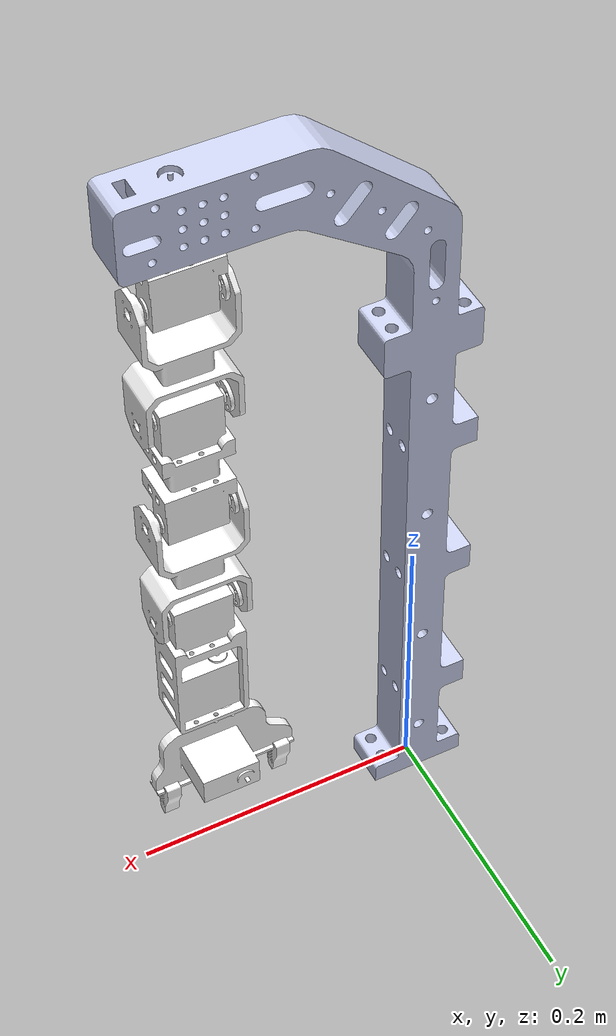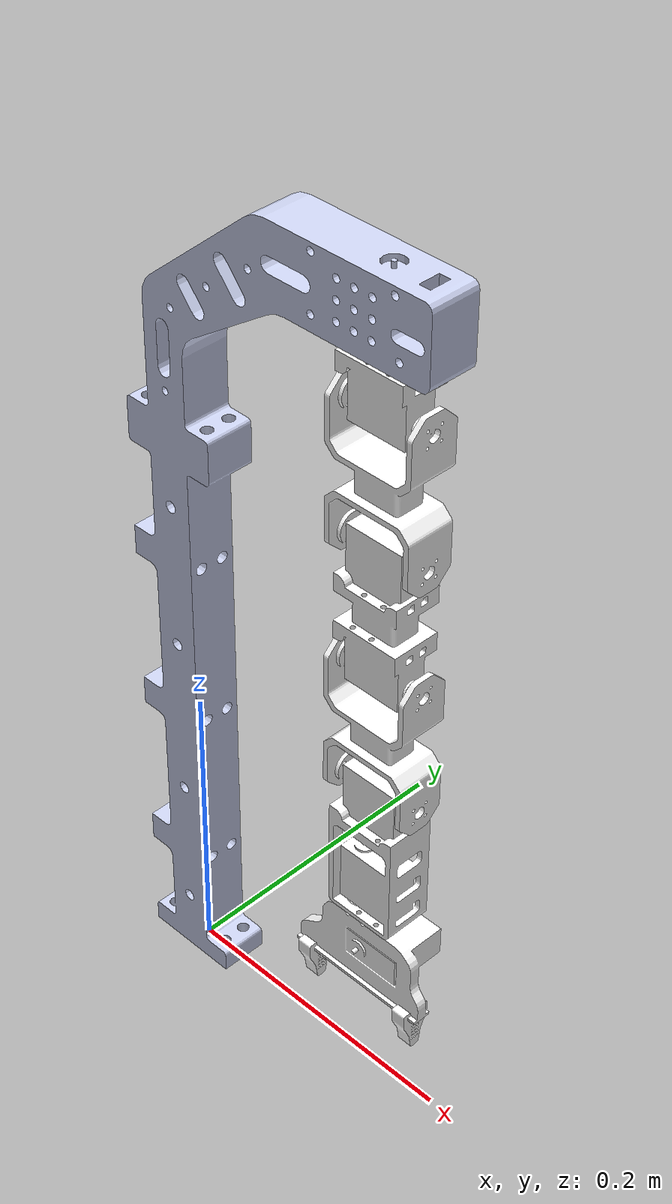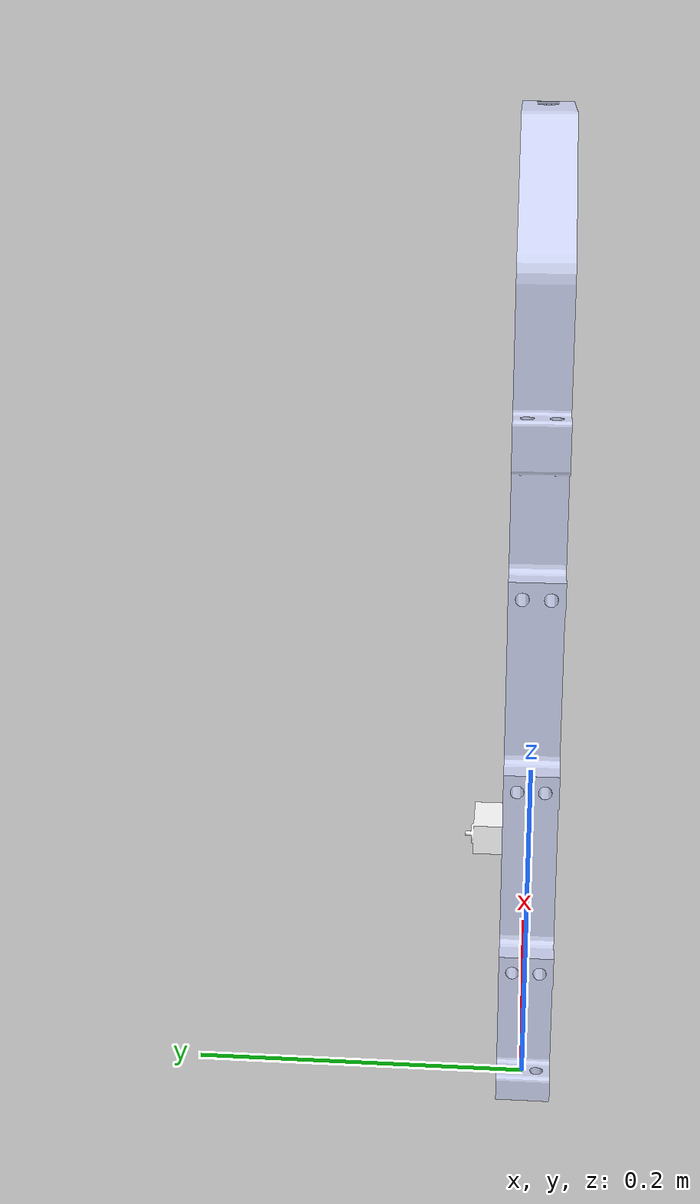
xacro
<?xml version="1.0"?>
<robot xmlns:xacro="http://www.ros.org/wiki/xacro" name="pick_place_arm">
    <xacro:arg name="initial_positions_file" default="initial_positions.yaml" />
    <xacro:arg name="use_fake_hardware" default="false" />

    <!-- Import pick_place_arm URDF -->
    <xacro:include filename="$(find pick_place_arm)/urdf/arm.urdf.xacro" />

    <!-- Conditionally include fake hardware ros2_control if not using Gazebo -->
    <xacro:if value="$(arg use_fake_hardware)">
        <xacro:include filename="$(find pick_place_hardware)/config/fake_hardware.ros2_control.xacro" />
        <xacro:fake_hardware_ros2_control name="FakeRobotSystem" />
    </xacro:if>
</robot>

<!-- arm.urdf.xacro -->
<robot xmlns:xacro="http://www.ros.org/wiki/xacro" name="pick_place_arm">

    <xacro:arg name="gazebo_control" default="true" />
    <!-- Add dummy world link and fixed base_joint so base_link is not the URDF root
         (matches SRDF which declares base_joint and avoids KDL root-inertia warning) -->
    <link name="world" />
    <joint name="base_joint" type="fixed">
        <parent link="world" />
        <child link="base_link" />
        <!-- base_link at world origin (z=0) -->
        <origin rpy="0 0 0" xyz="0 0 0" />
    </joint>

    <!-- base link/joint -->
    <link
        name="base_link">
        <inertial>
            <origin
                xyz="0.032059662853705 1.38777878078145E-16 0.341229394008098"
                rpy="0 0 0" />
            <mass
                value="0.78517256166207" />
            <inertia
                ixx="0.0070784931397645"
                ixy="-4.56743079844887E-18"
                ixz="-0.000731711350776652"
                iyy="0.00836971536713227"
                iyz="-2.53429520874075E-18"
                izz="0.00132642251104824" />
        </inertial>
        <visual>
            <!-- shift mesh down by inertial z so bottom sits near world z=0 -->
            <origin
                xyz="0 0 0"
                rpy="0 0 0" />
            <geometry>
                <mesh
                    filename="package://pick_place_arm/meshes/base_link.STL"
                    scale="1 1 1" />
            </geometry>
            <material
                name="">
                <color
                    rgba="0.792156862745098 0.819607843137255 0.933333333333333 1" />
            </material>
        </visual>
        <collision>
            <!-- match collision to visual offset -->
            <origin
                xyz="0 0 0"
                rpy="0 0 0" />
            <geometry>
                <mesh
                    filename="package://pick_place_arm/meshes/base_link.STL"
                    scale="1 1 1" />
            </geometry>
        </collision>
    </link>

    <!-- link and  joint 1 -->
    <link
        name="l1">
        <inertial>
            <origin
                xyz="-2.06768076421691E-05 5.55111512312578E-17 -0.0236812970530659"
                rpy="0 0 0" />
            <mass
                value="0.0412610106656879" />
            <inertia
                ixx="6.45452263055135E-06"
                ixy="2.11421567445258E-20"
                ixz="-5.6717389565191E-10"
                iyy="1.08529418395194E-05"
                iyz="-1.09193933489413E-20"
                izz="8.35698735982533E-06" />
        </inertial>
        <visual>
            <origin
                xyz="0 0 0"
                rpy="0 0 0" />
            <geometry>
                <mesh
                    filename="package://pick_place_arm/meshes/l1.STL"
                    scale="1 1 1" />
            </geometry>
            <material
                name="">
                <color
                    rgba="1 1 1 1" />
            </material>
        </visual>
        <collision>
            <origin
                xyz="0 0 0"
                rpy="0 0 0" />
            <geometry>
                <mesh
                    filename="package://pick_place_arm/meshes/l1.STL"
                    scale="1 1 1" />
            </geometry>
        </collision>
    </link>

    <joint
        name="j1"
        type="revolute">
        <origin
            xyz="0.152 0 0.4755"
            rpy="3.14159265358979 0 0" />
        <parent
            link="base_link" />
        <child
            link="l1" />
        <axis
            xyz="0 0 1" />
        <limit
            lower="-3.14"
            upper="3.14"
            effort="3.5"
            velocity="5" />
    </joint>

    <transmission name="l1_trans">
        <type>transmission_interface/SimpleTransmission</type>
        <joint name="j1">
            <hardwareInterface>hardware_interface/PositionJointInterface</hardwareInterface>
        </joint>
        <actuator name="l1_motor">
            <hardwareInterface>hardware_interface/PositionJointInterface</hardwareInterface>
            <mechanicalReduction>1</mechanicalReduction>
        </actuator>
    </transmission>

    <gazebo reference="l1">
        <selfCollide>false</selfCollide>
    </gazebo>

    <!-- link and joint 2 -->
    <link
        name="l2">
        <inertial>
            <origin
                xyz="0.0420000000000759 -3.38923333842445E-13 -2.54136989230602E-16"
                rpy="0 0 0" />
            <mass
                value="0.0412639771770678" />
            <inertia
                ixx="2.03861872352237E-05"
                ixy="3.95910079860835E-17"
                ixz="-4.11255155103057E-20"
                iyy="2.30212674355658E-05"
                iyz="3.04387551826405E-19"
                izz="8.54833447441498E-06" />
        </inertial>
        <visual>
            <origin
                xyz="0 0 0"
                rpy="0 0 0" />
            <geometry>
                <mesh
                    filename="package://pick_place_arm/meshes/l2.STL"
                    scale="1 1 1" />
            </geometry>
            <material
                name="">
                <color
                    rgba="1 1 1 1" />
            </material>
        </visual>
        <collision>
            <origin
                xyz="0 0 0"
                rpy="0 0 0" />
            <geometry>
                <mesh
                    filename="package://pick_place_arm/meshes/l2.STL"
                    scale="1 1 1" />
            </geometry>
        </collision>
    </link>

    <joint
        name="j2"
        type="revolute">
        <origin
            xyz="0 0 -0.01"
            rpy="0 -1.5707963267949 0" />
        <parent
            link="l1" />
        <child
            link="l2" />
        <axis
            xyz="0 0 1" />
        <limit
            lower="-1.57"
            upper="1.57"
            effort="3.5"
            velocity="5" />
    </joint>

    <transmission name="l2_trans">
        <type>transmission_interface/SimpleTransmission</type>
        <joint name="j2">
            <hardwareInterface>hardware_interface/PositionJointInterface</hardwareInterface>
        </joint>
        <actuator name="l2_motor">
            <hardwareInterface>hardware_interface/PositionJointInterface</hardwareInterface>
            <mechanicalReduction>1</mechanicalReduction>
        </actuator>
    </transmission>

    <gazebo reference="l2">
        <selfCollide>false</selfCollide>
    </gazebo>

    <!-- link and joint 3 -->
    <link
        name="l3">
        <inertial>
            <origin
                xyz="0.0424999999999702 -4.47003545289704E-13 -2.42861286636753E-16"
                rpy="0 0 0" />
            <mass
                value="0.0895845826981461" />
            <inertia
                ixx="1.79494942674491E-05"
                ixy="-2.23469531118263E-17"
                ixz="-1.134347791319E-09"
                iyy="2.28721177257845E-05"
                iyz="-7.76933238540634E-21"
                izz="1.35465501240485E-05" />
        </inertial>
        <visual>
            <origin
                xyz="0 0 0"
                rpy="0 0 0" />
            <geometry>
                <mesh
                    filename="package://pick_place_arm/meshes/l3.STL"
                    scale="1 1 1" />
            </geometry>
            <material
                name="">
                <color
                    rgba="1 1 1 1" />
            </material>
        </visual>
        <collision>
            <origin
                xyz="0 0 0"
                rpy="0 0 0" />
            <geometry>
                <mesh
                    filename="package://pick_place_arm/meshes/l3.STL"
                    scale="1 1 1" />
            </geometry>
        </collision>
    </link>

    <joint
        name="j3"
        type="revolute">
        <origin
            xyz="0.084 0 0"
            rpy="0 0 0" />
        <parent
            link="l2" />
        <child
            link="l3" />
        <axis
            xyz="0 0 1" />
        <limit
            lower="-1.57"
            upper="1.57"
            effort="3.5"
            velocity="5" />
    </joint>

    <transmission name="l3_trans">
        <type>transmission_interface/SimpleTransmission</type>
        <joint name="j3">
            <hardwareInterface>hardware_interface/PositionJointInterface</hardwareInterface>
        </joint>
        <actuator name="l3_motor">
            <hardwareInterface>hardware_interface/PositionJointInterface</hardwareInterface>
            <mechanicalReduction>1</mechanicalReduction>
        </actuator>
    </transmission>

    <gazebo reference="l3">
        <selfCollide>false</selfCollide>
    </gazebo>

    <!-- link and joint 4 -->
    <link
        name="l4">
        <inertial>
            <origin
                xyz="0.0419999999999631 -8.77908856722343E-14 -6.76542155630955E-17"
                rpy="0 0 0" />
            <mass
                value="0.0412639771770679" />
            <inertia
                ixx="2.03861872352238E-05"
                ixy="-1.19599812382758E-17"
                ixz="1.25855831166055E-20"
                iyy="2.30212674355659E-05"
                iyz="-3.19494281538403E-21"
                izz="8.54833447441501E-06" />
        </inertial>
        <visual>
            <origin
                xyz="0 0 0"
                rpy="0 0 0" />
            <geometry>
                <mesh
                    filename="package://pick_place_arm/meshes/l4.STL"
                    scale="1 1 1" />
            </geometry>
            <material
                name="">
                <color
                    rgba="1 1 1 1" />
            </material>
        </visual>
        <collision>
            <origin
                xyz="0 0 0"
                rpy="0 0 0" />
            <geometry>
                <mesh
                    filename="package://pick_place_arm/meshes/l4.STL"
                    scale="1 1 1" />
            </geometry>
        </collision>
    </link>

    <joint
        name="j4"
        type="revolute">
        <origin
            xyz="0.085 0 0"
            rpy="0 0 0" />
        <parent
            link="l3" />
        <child
            link="l4" />
        <axis
            xyz="0 0 1" />
        <limit
            lower="-1.57"
            upper="1.57"
            effort="1.5"
            velocity="5" />
    </joint>

    <transmission name="l4_trans">
        <type>transmission_interface/SimpleTransmission</type>
        <joint name="j4">
            <hardwareInterface>hardware_interface/PositionJointInterface</hardwareInterface>
        </joint>
        <actuator name="l4_motor">
            <hardwareInterface>hardware_interface/PositionJointInterface</hardwareInterface>
            <mechanicalReduction>1</mechanicalReduction>
        </actuator>
    </transmission>

    <gazebo reference="l4">
        <selfCollide>false</selfCollide>
    </gazebo>

    <!-- link and joint 5 -->
    <link
        name="l5">
        <inertial>
            <origin
                xyz="0.0451157165053789 -6.8534003345444E-05 0.000519380260867306"
                rpy="0 0 0" />
            <mass
                value="0.0877350527785507" />
            <inertia
                ixx="2.15592269641528E-05"
                ixy="1.08634477532556E-12"
                ixz="6.61837513500239E-07"
                iyy="4.21271739710682E-05"
                iyz="-2.81945761009753E-12"
                izz="2.9808063539004E-05" />
        </inertial>
        <visual>
            <origin
                xyz="0 0 0"
                rpy="0 0 0" />
            <geometry>
                <mesh
                    filename="package://pick_place_arm/meshes/l5.STL"
                    scale="1 1 1" />
            </geometry>
            <material
                name="">
                <color
                    rgba="1 1 1 1" />
            </material>
        </visual>
        <collision>
            <origin
                xyz="0 0 0"
                rpy="0 0 0" />
            <geometry>
                <mesh
                    filename="package://pick_place_arm/meshes/l5.STL"
                    scale="1 1 1" />
            </geometry>
        </collision>
    </link>

    <joint
        name="j5"
        type="revolute">
        <origin
            xyz="0.0840000000000002 0 0"
            rpy="0 0 0" />
        <parent
            link="l4" />
        <child
            link="l5" />
        <axis
            xyz="0 0 1" />
        <limit
            lower="-1.57"
            upper="1.57"
            effort="1.5"
            velocity="5" />
    </joint>

    <transmission name="l5_trans">
        <type>transmission_interface/SimpleTransmission</type>
        <joint name="j5">
            <hardwareInterface>hardware_interface/PositionJointInterface</hardwareInterface>
        </joint>
        <actuator name="l5_motor">
            <hardwareInterface>hardware_interface/PositionJointInterface</hardwareInterface>
            <mechanicalReduction>1</mechanicalReduction>
        </actuator>
    </transmission>

    <gazebo reference="l5">
        <selfCollide>false</selfCollide>
    </gazebo>

    <!-- link and joint 6 -->
    <link
        name="l6">
        <inertial>
            <origin
                xyz="0.00576248475220886 -0.00836947985173901 0.0418281038474617"
                rpy="0 0 0" />
            <mass
                value="0.0615654328368001" />
            <inertia
                ixx="1.3328395039682E-05"
                ixy="-5.68177296906049E-17"
                ixz="8.11263645845668E-07"
                iyy="3.09874612165587E-05"
                iyz="1.14559993754873E-10"
                izz="2.71409608334319E-05" />
        </inertial>
        <visual>
            <origin
                xyz="0 0 0"
                rpy="0 0 0" />
            <geometry>
                <mesh
                    filename="package://pick_place_arm/meshes/l6.STL"
                    scale="1 1 1" />
            </geometry>
            <material
                name="">
                <color
                    rgba="1 1 1 1" />
            </material>
        </visual>
        <collision>
            <origin
                xyz="0 0 0"
                rpy="0 0 0" />
            <geometry>
                <mesh
                    filename="package://pick_place_arm/meshes/l6.STL"
                    scale="1 1 1" />
            </geometry>
        </collision>
    </link>

    <joint
        name="j6"
        type="revolute">
        <origin
            xyz="0.0969999999999956 -0.000110000000008909 0.0114999999999995"
            rpy="0 1.5707963267949 0" />
        <parent
            link="l5" />
        <child
            link="l6" />
        <axis
            xyz="0 0 1" />
        <limit
            lower="-3.14"
            upper="3.14"
            effort="1.5"
            velocity="5" />
    </joint>

    <transmission name="l6_trans">
        <type>transmission_interface/SimpleTransmission</type>
        <joint name="j6">
            <hardwareInterface>hardware_interface/PositionJointInterface</hardwareInterface>
        </joint>
        <actuator name="l6_motor">
            <hardwareInterface>hardware_interface/PositionJointInterface</hardwareInterface>
            <mechanicalReduction>1</mechanicalReduction>
        </actuator>
    </transmission>

    <gazebo reference="l6">
        <selfCollide>false</selfCollide>
    </gazebo>

    <!-- link and joint 7l -->
    <link name="l7l">
        <inertial>
            <origin xyz="-0.00499999999999944 -0.00382395666679802 0.0172076606105726" rpy="0 0 0" />
            <mass value="0.00361048012577551" />
            <inertia ixx="3.45772069124056E-07" ixy="-2.03295410732378E-22" ixz="-6.72951643176804E-22" iyy="2.76867577106351E-07" iyz="-1.6984888429881E-10" izz="1.29079160780631E-07" />
        </inertial>
        <visual>
            <origin xyz="0 0 0" rpy="0 0 0" />
            <geometry>
                <mesh filename="package://pick_place_arm/meshes/l7l.STL" scale="1 1 1" />
            </geometry>
            <material name="">
                <color rgba="1 1 1 1" />
            </material>
        </visual>
        <collision>
            <origin xyz="0 0 0" rpy="0 0 0" />
            <geometry>
                <mesh filename="package://pick_place_arm/meshes/l7l.STL" scale="1 1 1" />
            </geometry>
        </collision>
    </link>

    <joint name="j7l" type="prismatic">
        <!-- restored original joint origin so gripper aligns correctly with l6 -->
        <origin xyz="-0.0349999999999994 0.00432899628274147 0.059645910780674" rpy="0 0 0" />
        <parent link="l6" />
        <child link="l7l" />
        <axis xyz="-1 0 0" />
        <limit lower="-0.07" upper="0" effort="1.5" velocity="0.1" />
    </joint>

    <transmission name="l7l_trans">
        <type>transmission_interface/SimpleTransmission</type>
        <joint name="j7l">
            <hardwareInterface>hardware_interface/PositionJointInterface</hardwareInterface>
        </joint>
        <actuator name="l7l_motor">
            <hardwareInterface>hardware_interface/PositionJointInterface</hardwareInterface>
            <mechanicalReduction>1</mechanicalReduction>
        </actuator>
    </transmission>

    <gazebo reference="l7l">
        <selfCollide>false</selfCollide>
    </gazebo>

    <!-- link and joint 7r -->
    <link name="l7r">
        <inertial>
            <origin xyz="-0.00500000000000059 -0.00382395666679794 -0.0172076606105728" rpy="0 0 0" />
            <mass value="0.0036104801257755" />
            <inertia ixx="3.45772069124056E-07" ixy="6.60142987848138E-22" ixz="-9.38876447288083E-22" iyy="2.7686757710635E-07" iyz="1.69848884298589E-10" izz="1.29079160780631E-07" />
        </inertial>
        <visual>
            <origin xyz="0 0 0" rpy="0 0 0" />
            <geometry>
                <mesh filename="package://pick_place_arm/meshes/l7r.STL" scale="1 1 1" />
            </geometry>
            <material name="">
                <color rgba="1 1 1 1" />
            </material>
        </visual>
        <collision>
            <origin xyz="0 0 0" rpy="0 0 0" />
            <geometry>
                <mesh filename="package://pick_place_arm/meshes/l7r.STL" scale="1 1 1" />
            </geometry>
        </collision>
    </link>

    <joint name="j7r" type="prismatic">
        <!-- restored original joint origin so gripper aligns correctly with l6 -->
        <origin xyz="0.0350000000000013 0.00432899628274103 0.0596459107806736" rpy="3.14159265358979 0 3.14159265358979" />
        <parent link="l6" />
        <child link="l7r" />
        <axis xyz="1 0 0" />
        <limit lower="0" upper="0.07" effort="1.5" velocity="0.1" />
    </joint>

    <transmission name="l7r_trans">
        <type>transmission_interface/SimpleTransmission</type>
        <joint name="j7r">
            <hardwareInterface>hardware_interface/PositionJointInterface</hardwareInterface>
        </joint>
        <actuator name="l7r_motor">
            <hardwareInterface>hardware_interface/PositionJointInterface</hardwareInterface>
            <mechanicalReduction>1</mechanicalReduction>
        </actuator>
    </transmission>

    <gazebo reference="l7r">
        <selfCollide>false</selfCollide>
    </gazebo>

    <xacro:if value="$(arg gazebo_control)">
        <ros2_control name="GazeboSimSystem" type="system">
            <hardware>
                <plugin>gz_ros2_control/GazeboSimSystem</plugin>
            </hardware>

            <joint name="j1">
                <command_interface name="position" />
                <state_interface name="position" />
                <state_interface name="velocity" />
            </joint>

            <joint name="j2">
                <command_interface name="position" />
                <state_interface name="position" />
                <state_interface name="velocity" />
            </joint>

            <joint name="j3">
                <command_interface name="position" />
                <state_interface name="position" />
                <state_interface name="velocity" />
            </joint>

            <joint name="j4">
                <command_interface name="position" />
                <state_interface name="position" />
                <state_interface name="velocity" />
            </joint>

            <joint name="j5">
                <command_interface name="position" />
                <state_interface name="position" />
                <state_interface name="velocity" />
            </joint>

            <joint name="j6">
                <command_interface name="position" />
                <state_interface name="position" />
                <state_interface name="velocity" />
            </joint>

            <joint name="j7l">
                <command_interface name="position" />
                <state_interface name="position" />
                <state_interface name="velocity" />
            </joint>

            <joint name="j7r">
                <command_interface name="position" />
                <state_interface name="position" />
                <state_interface name="velocity" />
            </joint>

        </ros2_control>
    </xacro:if>

    <gazebo>
        <plugin filename="gz_ros2_control-system" name="gz_ros2_control::GazeboSimROS2ControlPlugin">
            <robot_param>robot_description</robot_param>
            <robot_param_node>robot_state_publisher</robot_param_node>
            <parameters>$(find pick_place_arm)/config/ros2_control.yaml</parameters>
        </plugin>
    </gazebo>

</robot>
